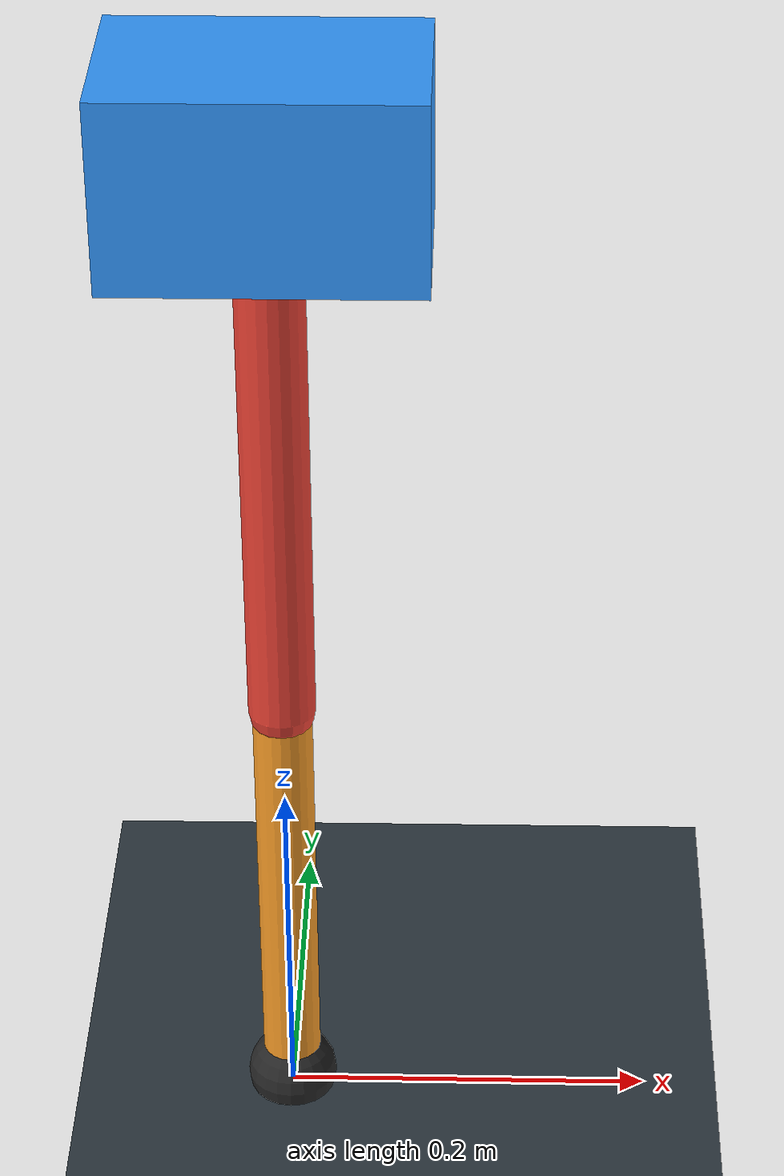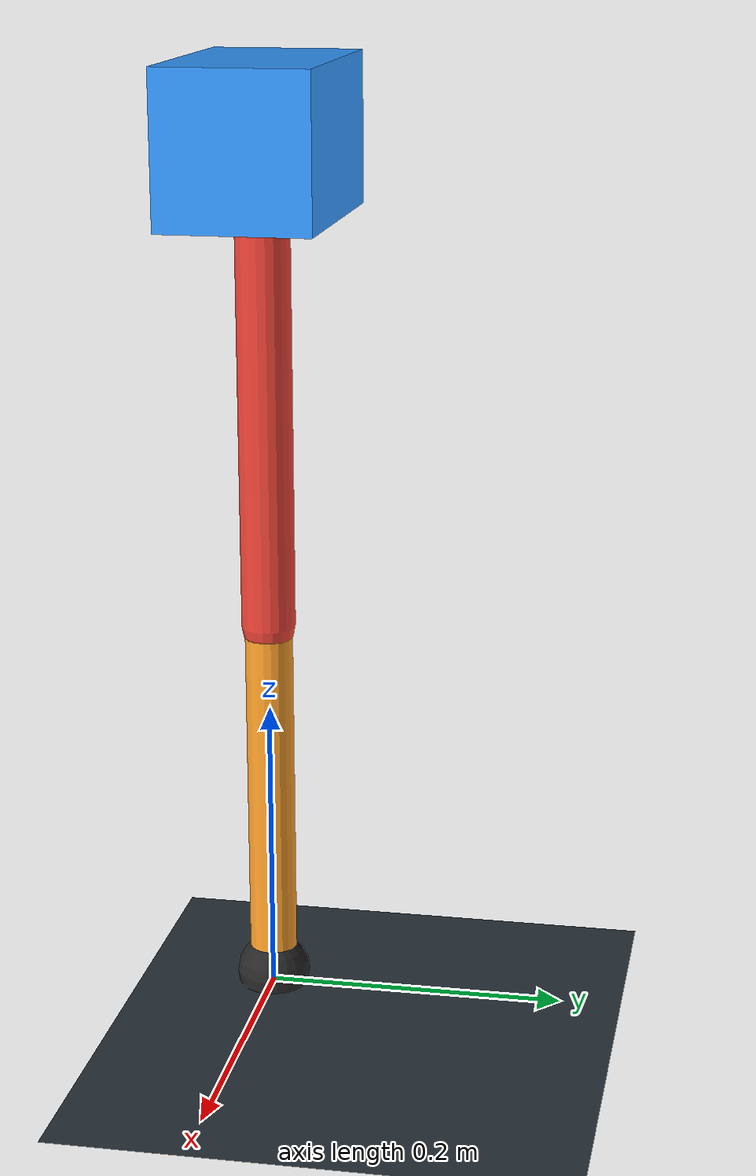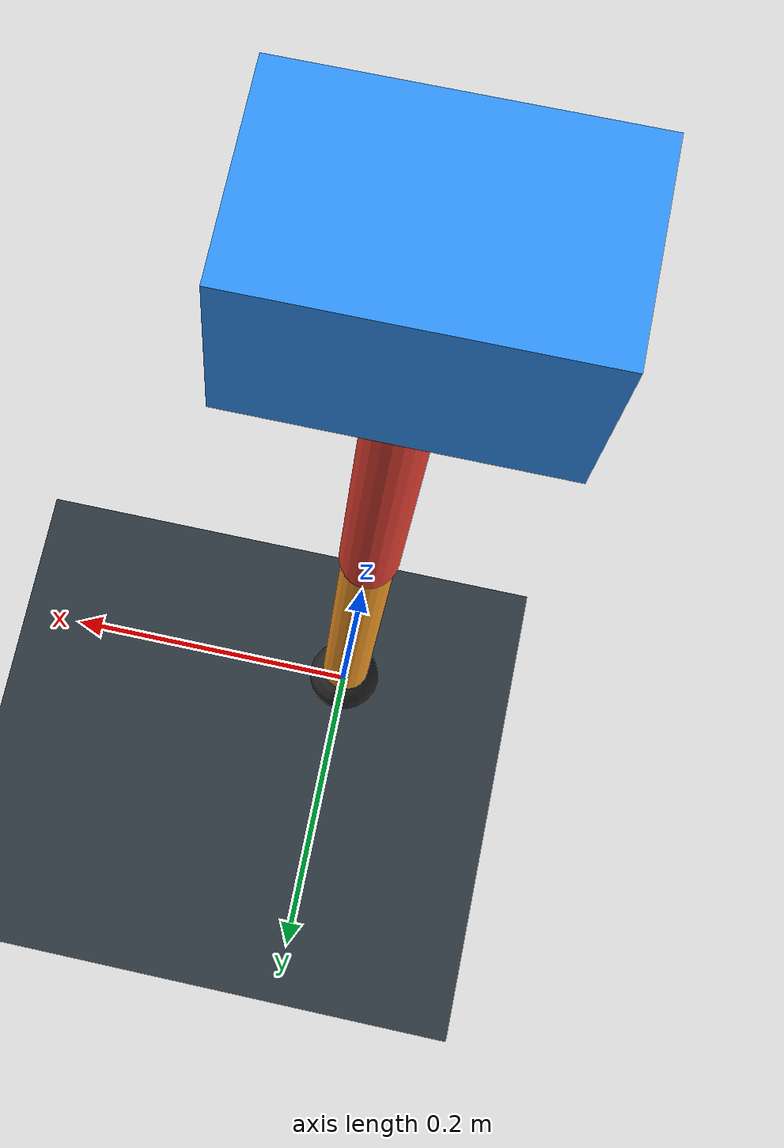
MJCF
<mujoco model="single_axis_two_bar">
  <compiler angle="radian" inertiafromgeom="true"/>
  <option timestep="0.001" integrator="implicitfast" gravity="0 0 -9.81"/>
  <default>
    <joint damping="0.08"/>
    <geom friction="1.2 0.01 0.0001" condim="3"/>
  </default>
  <worldbody>
    <geom name="floor" type="plane" size="5 5 0.1" rgba="0.18 0.22 0.25 1"/>
    <body name="carriage" pos="0 0 0.580646468523219">
      <joint name="pole_slide" type="slide" axis="0 0 1"/>
      <geom name="payload" type="box" size="0.08 0.05 0.05" mass="2.892981363009822" rgba="0.2 0.6 1 1"/>
      <body name="thigh" pos="0 0 0">
        <joint name="hip" type="hinge" axis="0 1 0"/>
        <geom name="thigh_link" type="capsule" fromto="0 0 0 0 0 -0.3219885319491003" size="0.018" mass="0.2294210837167982" rgba="0.9 0.25 0.2 1"/>
        <body name="shank" pos="0 0 -0.3219885319491003">
          <joint name="knee" type="hinge" axis="0 1 0"/>
          <geom name="shank_link" type="capsule" fromto="0 0 0 0 0 -0.25084287889957907" size="0.016" mass="0.17872886581215333" rgba="0.95 0.6 0.15 1"/>
          <geom name="foot" type="sphere" pos="0 0 -0.25084287889957907" size="0.025" mass="0.03" rgba="0.15 0.15 0.15 1"/>
          <site name="toe" pos="0 0 -0.25084287889957907" size="0.008"/>
        </body>
      </body>
    </body>
  </worldbody>
  <actuator>
    <motor name="hip_motor" joint="hip" ctrlrange="-27.907382083173 27.907382083173"/>
    <motor name="knee_motor" joint="knee" ctrlrange="-105.62881706325591 105.62881706325591"/>
  </actuator>
</mujoco>
